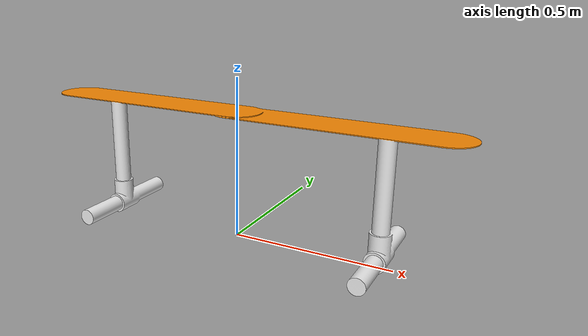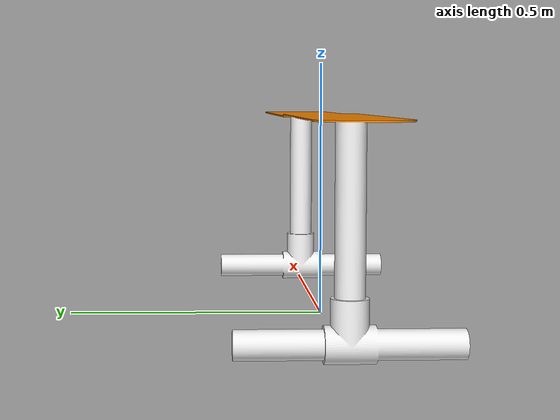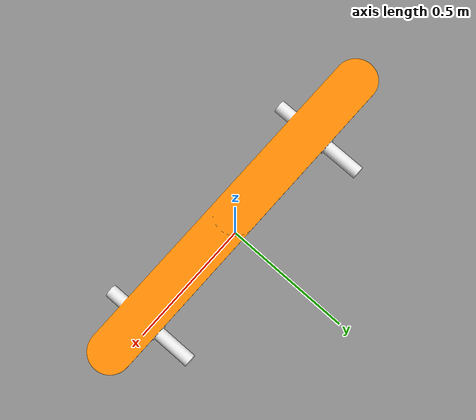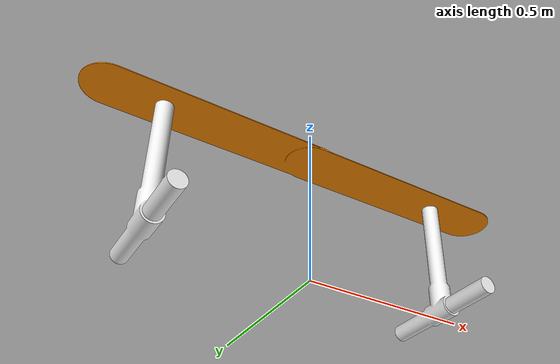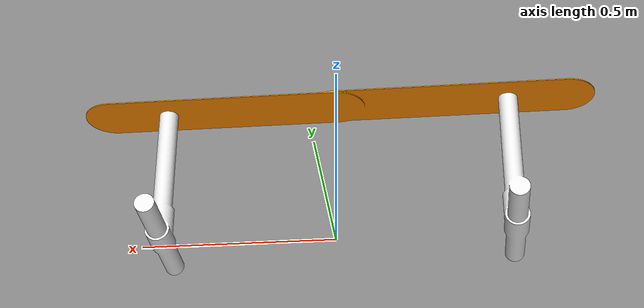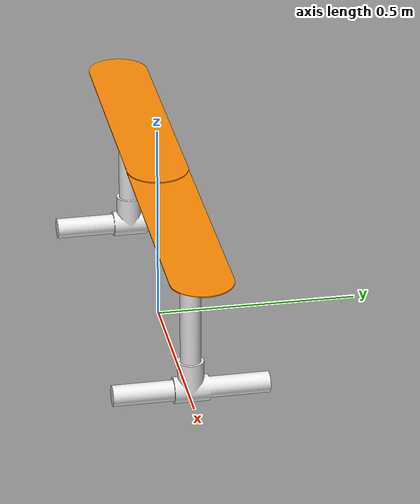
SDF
<?xml version="1.0" ?>
<sdf version="1.9">
    <model name="path_marker_straight">
        <static>true</static>
        <link name="path_marker_straight">
            <visual name="path_marker_straight_visual">
                <geometry>
                    <mesh>
                        <uri>path_marker_straight.dae</uri>
                    </mesh>
                </geometry>
            </visual>
            <collision name="path_marker_straight_collision">
                <geometry>
                    <mesh>
                        <uri>path_marker_straight.dae</uri>
                    </mesh>
                </geometry>
            </collision>
        </link>
    </model>
</sdf>
